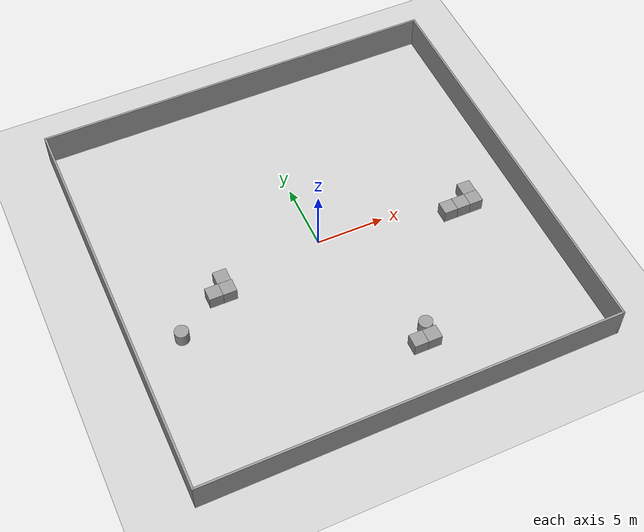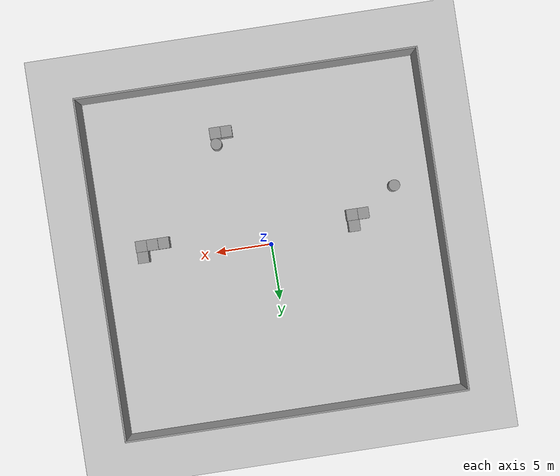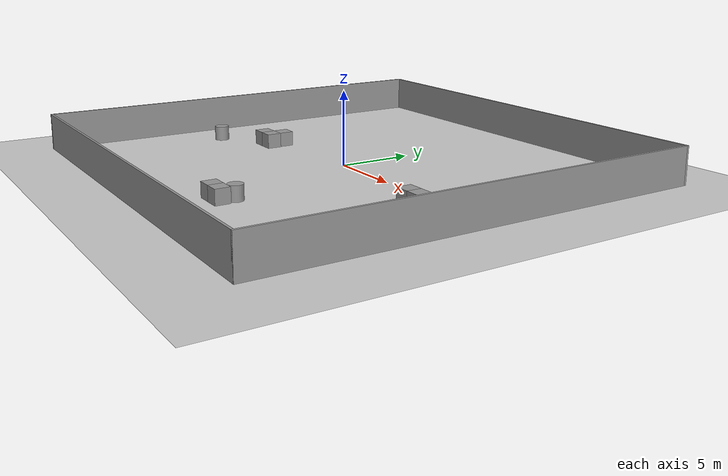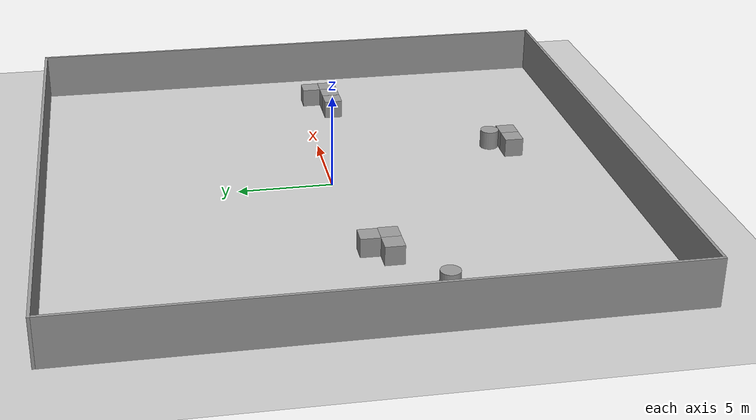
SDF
<sdf version="1.6">
 <world name="default">
  <light name="sun" type="directional">
   <pose>0 0 10 0 -0 0</pose>
   <diffuse>0.8 0.8 0.8 1</diffuse>
   <specular>0.2 0.2 0.2 1</specular>
   <attenuation>
    <range>1000</range>
    <constant>0.9</constant>
    <linear>0.01</linear>
    <quadratic>0.001</quadratic>
   </attenuation>
   <direction>-0.5 0.1 -0.9</direction>
  </light>
  <model name="ground_plane">
   <static>1</static>
   <link name="link">
    <collision name="collision">
     <geometry><plane><normal>0 0 1</normal><size>100 100</size></plane></geometry>
     <surface>
      <contact><collide_bitmask>65535</collide_bitmask></contact>
      <friction><ode><mu>100</mu><mu2>50</mu2></ode></friction>
     </surface>
    </collision>
    <visual name="visual">
     <cast_shadows>0</cast_shadows>
     <geometry><plane><normal>0 0 1</normal><size>100 100</size></plane></geometry>
     <material>
      <script><uri>file://media/materials/scripts/gazebo.material</uri><name>Gazebo/Grey</name></script>
     </material>
    </visual>
   </link>
  </model>
  <gravity>0 0 -9.8</gravity>
  <magnetic_field>6e-06 2.3e-05 -4.2e-05</magnetic_field>
  <atmosphere type="adiabatic"/>
  <physics name="default_physics" default="0" type="ode">
   <max_step_size>0.001</max_step_size>
   <real_time_factor>1</real_time_factor>
   <real_time_update_rate>1000</real_time_update_rate>
  </physics>
  <scene><ambient>0.4 0.4 0.4 1</ambient><background>0.7 0.7 0.7 1</background><shadows>1</shadows></scene>
  <spherical_coordinates>
   <surface_model>EARTH_WGS84</surface_model>
   <latitude_deg>0</latitude_deg>
   <longitude_deg>0</longitude_deg>
   <elevation>0</elevation>
   <heading_deg>0</heading_deg>
  </spherical_coordinates>
  <model name="30x30">
   <pose>0.048804 0.013402 0 0 -0 0</pose>
   <link name="Wall_1">
    <collision name="Wall_1_Collision">
     <geometry><box><size>30.15 0.15 2.5</size></box></geometry>
     <pose>0 0 1.25 0 -0 0</pose>
    </collision>
    <visual name="Wall_1_Visual">
     <pose>0 0 1.25 0 -0 0</pose>
     <geometry><box><size>30.15 0.15 2.5</size></box></geometry>
     <material>
      <script><uri>file://media/materials/scripts/gazebo.material</uri><name>Gazebo/Grey</name></script>
      <ambient>1 1 1 1</ambient>
     </material>
     <meta><layer>0</layer></meta>
    </visual>
    <pose>0 15 0 0 -0 3.14159</pose>
   </link>
   <link name="Wall_2">
    <collision name="Wall_2_Collision">
     <geometry><box><size>30.15 0.15 2.5</size></box></geometry>
     <pose>0 0 1.25 0 -0 0</pose>
    </collision>
    <visual name="Wall_2_Visual">
     <pose>0 0 1.25 0 -0 0</pose>
     <geometry><box><size>30.15 0.15 2.5</size></box></geometry>
     <material>
      <script><uri>file://media/materials/scripts/gazebo.material</uri><name>Gazebo/Grey</name></script>
      <ambient>1 1 1 1</ambient>
     </material>
     <meta><layer>0</layer></meta>
    </visual>
    <pose>-15 0 0 0 -0 -1.5708</pose>
   </link>
   <link name="Wall_3">
    <collision name="Wall_3_Collision">
     <geometry><box><size>30.15 0.15 2.5</size></box></geometry>
     <pose>0 0 1.25 0 -0 0</pose>
    </collision>
    <visual name="Wall_3_Visual">
     <pose>0 0 1.25 0 -0 0</pose>
     <geometry><box><size>30.15 0.15 2.5</size></box></geometry>
     <material>
      <script><uri>file://media/materials/scripts/gazebo.material</uri><name>Gazebo/Grey</name></script>
      <ambient>1 1 1 1</ambient>
     </material>
     <meta><layer>0</layer></meta>
    </visual>
    <pose>0 -15 0 0 -0 0</pose>
   </link>
   <link name="Wall_4">
    <collision name="Wall_4_Collision">
     <geometry><box><size>30.15 0.15 2.5</size></box></geometry>
     <pose>0 0 1.25 0 -0 0</pose>
    </collision>
    <visual name="Wall_4_Visual">
     <pose>0 0 1.25 0 -0 0</pose>
     <geometry><box><size>30.15 0.15 2.5</size></box></geometry>
     <material>
      <script><uri>file://media/materials/scripts/gazebo.material</uri><name>Gazebo/Grey</name></script>
      <ambient>1 1 1 1</ambient>
     </material>
     <meta><layer>0</layer></meta>
    </visual>
    <pose>15 0 0 0 -0 1.5708</pose>
   </link>
   <static>1</static>
  </model>
  <model name="unit_box">
   <pose>11.4108 -0.55552 0.5 -0 -0 -0.007681</pose>
   <link name="link">
    <inertial>
     <mass>1</mass>
     <inertia>
      <ixx>0.166667</ixx>
      <ixy>0</ixy>
      <ixz>0</ixz>
      <iyy>0.166667</iyy>
      <iyz>0</iyz>
      <izz>0.166667</izz>
     </inertia>
    </inertial>
    <collision name="collision"><geometry><box><size>1 1 1</size></box></geometry></collision>
    <visual name="visual">
     <geometry><box><size>1 1 1</size></box></geometry>
     <material>
      <script><name>Gazebo/Grey</name><uri>file://media/materials/scripts/gazebo.material</uri></script>
     </material>
    </visual>
   </link>
  </model>
  <model name="unit_box_0">
   <pose>11.4395 -1.55863 0.5 -0 -0 -0.001548</pose>
   <link name="link">
    <inertial>
     <mass>1</mass>
     <inertia>
      <ixx>0.166667</ixx>
      <ixy>0</ixy>
      <ixz>0</ixz>
      <iyy>0.166667</iyy>
      <iyz>0</iyz>
      <izz>0.166667</izz>
     </inertia>
    </inertial>
    <collision name="collision"><geometry><box><size>1 1 1</size></box></geometry></collision>
    <visual name="visual">
     <geometry><box><size>1 1 1</size></box></geometry>
     <material>
      <script><name>Gazebo/Grey</name><uri>file://media/materials/scripts/gazebo.material</uri></script>
     </material>
    </visual>
   </link>
  </model>
  <model name="unit_box_1">
   <pose>10.4394 -1.55148 0.5 0 0 -0.0013</pose>
   <link name="link">
    <inertial>
     <mass>1</mass>
     <inertia>
      <ixx>0.166667</ixx>
      <ixy>0</ixy>
      <ixz>0</ixz>
      <iyy>0.166667</iyy>
      <iyz>0</iyz>
      <izz>0.166667</izz>
     </inertia>
    </inertial>
    <collision name="collision"><geometry><box><size>1 1 1</size></box></geometry></collision>
    <visual name="visual">
     <geometry><box><size>1 1 1</size></box></geometry>
     <material>
      <script><name>Gazebo/Grey</name><uri>file://media/materials/scripts/gazebo.material</uri></script>
     </material>
    </visual>
   </link>
  </model>
  <model name="unit_box_2">
   <pose>9.43599 -1.55134 0.499995 0 1e-05 0</pose>
   <link name="link">
    <inertial>
     <mass>1</mass>
     <inertia>
      <ixx>0.166667</ixx>
      <ixy>0</ixy>
      <ixz>0</ixz>
      <iyy>0.166667</iyy>
      <iyz>0</iyz>
      <izz>0.166667</izz>
     </inertia>
    </inertial>
    <collision name="collision"><geometry><box><size>1 1 1</size></box></geometry></collision>
    <visual name="visual">
     <geometry><box><size>1 1 1</size></box></geometry>
     <material>
      <script><name>Gazebo/Grey</name><uri>file://media/materials/scripts/gazebo.material</uri></script>
     </material>
    </visual>
   </link>
  </model>
  <model name="unit_cylinder">
   <pose>3.50735 -9.49154 0.499991 0 -0 0.000464</pose>
   <link name="link">
    <inertial>
     <mass>1</mass>
     <inertia><ixx>0.145833</ixx><ixy>0</ixy><ixz>0</ixz><iyy>0.145833</iyy><iyz>0</iyz><izz>0.125</izz></inertia>
    </inertial>
    <collision name="collision">
     <geometry><cylinder><radius>0.5</radius><length>1</length></cylinder></geometry>
    </collision>
    <visual name="visual">
     <geometry><cylinder><radius>0.5</radius><length>1</length></cylinder></geometry>
     <material>
      <script><name>Gazebo/Grey</name><uri>file://media/materials/scripts/gazebo.material</uri></script>
     </material>
    </visual>
   </link>
  </model>
  <model name="unit_box_3">
   <pose>3.4719 -10.4915 0.499995 1e-05 -0 -0.000559</pose>
   <link name="link">
    <inertial>
     <mass>1</mass>
     <inertia>
      <ixx>0.166667</ixx>
      <ixy>0</ixy>
      <ixz>0</ixz>
      <iyy>0.166667</iyy>
      <iyz>0</iyz>
      <izz>0.166667</izz>
     </inertia>
    </inertial>
    <collision name="collision"><geometry><box><size>1 1 1</size></box></geometry></collision>
    <visual name="visual">
     <geometry><box><size>1 1 1</size></box></geometry>
     <material>
      <script><name>Gazebo/Grey</name><uri>file://media/materials/scripts/gazebo.material</uri></script>
     </material>
    </visual>
   </link>
  </model>
  <model name="unit_box_4">
   <pose>2.47191 -10.4857 0.499995 -1e-05 -0 -0.000559</pose>
   <link name="link">
    <inertial>
     <mass>1</mass>
     <inertia>
      <ixx>0.166667</ixx>
      <ixy>0</ixy>
      <ixz>0</ixz>
      <iyy>0.166667</iyy>
      <iyz>0</iyz>
      <izz>0.166667</izz>
     </inertia>
    </inertial>
    <collision name="collision"><geometry><box><size>1 1 1</size></box></geometry></collision>
    <visual name="visual">
     <geometry><box><size>1 1 1</size></box></geometry>
     <material>
      <script><name>Gazebo/Grey</name><uri>file://media/materials/scripts/gazebo.material</uri></script>
     </material>
    </visual>
   </link>
  </model>
  <model name="unit_box_5">
   <pose>-7.48724 -0.514279 0.499995 -0 1e-05 -0.008172</pose>
   <link name="link">
    <inertial>
     <mass>1</mass>
     <inertia>
      <ixx>0.166667</ixx>
      <ixy>0</ixy>
      <ixz>0</ixz>
      <iyy>0.166667</iyy>
      <iyz>0</iyz>
      <izz>0.166667</izz>
     </inertia>
    </inertial>
    <collision name="collision"><geometry><box><size>1 1 1</size></box></geometry></collision>
    <visual name="visual">
     <geometry><box><size>1 1 1</size></box></geometry>
     <material>
      <script><name>Gazebo/Grey</name><uri>file://media/materials/scripts/gazebo.material</uri></script>
     </material>
    </visual>
   </link>
  </model>
  <model name="unit_box_6">
   <pose>-7.43778 -1.51758 0.499995 0 -1e-05 -0.001751</pose>
   <link name="link">
    <inertial>
     <mass>1</mass>
     <inertia>
      <ixx>0.166667</ixx>
      <ixy>0</ixy>
      <ixz>0</ixz>
      <iyy>0.166667</iyy>
      <iyz>0</iyz>
      <izz>0.166667</izz>
     </inertia>
    </inertial>
    <collision name="collision"><geometry><box><size>1 1 1</size></box></geometry></collision>
    <visual name="visual">
     <geometry><box><size>1 1 1</size></box></geometry>
     <material>
      <script><name>Gazebo/Grey</name><uri>file://media/materials/scripts/gazebo.material</uri></script>
     </material>
    </visual>
   </link>
  </model>
  <model name="unit_box_7">
   <pose>-8.43784 -1.51021 0.499995 0 -1e-05 -0.001613</pose>
   <link name="link">
    <inertial>
     <mass>1</mass>
     <inertia>
      <ixx>0.166667</ixx>
      <ixy>0</ixy>
      <ixz>0</ixz>
      <iyy>0.166667</iyy>
      <iyz>0</iyz>
      <izz>0.166667</izz>
     </inertia>
    </inertial>
    <collision name="collision"><geometry><box><size>1 1 1</size></box></geometry></collision>
    <visual name="visual">
     <geometry><box><size>1 1 1</size></box></geometry>
     <material>
      <script><name>Gazebo/Grey</name><uri>file://media/materials/scripts/gazebo.material</uri></script>
     </material>
    </visual>
   </link>
  </model>
  <model name="unit_cylinder_0">
   <pose>-11.5205 -3.52747 0.499993 -3e-06 2e-06 0</pose>
   <link name="link">
    <inertial>
     <mass>1</mass>
     <inertia><ixx>0.145833</ixx><ixy>0</ixy><ixz>0</ixz><iyy>0.145833</iyy><iyz>0</iyz><izz>0.125</izz></inertia>
    </inertial>
    <collision name="collision">
     <geometry><cylinder><radius>0.5</radius><length>1</length></cylinder></geometry>
    </collision>
    <visual name="visual">
     <geometry><cylinder><radius>0.5</radius><length>1</length></cylinder></geometry>
     <material>
      <script><name>Gazebo/Grey</name><uri>file://media/materials/scripts/gazebo.material</uri></script>
     </material>
    </visual>
   </link>
  </model>
  <model name="30x30env"><static>0</static><pose>32.1206 3.39752 0 0 -0 0</pose></model>
 </world>
</sdf>
